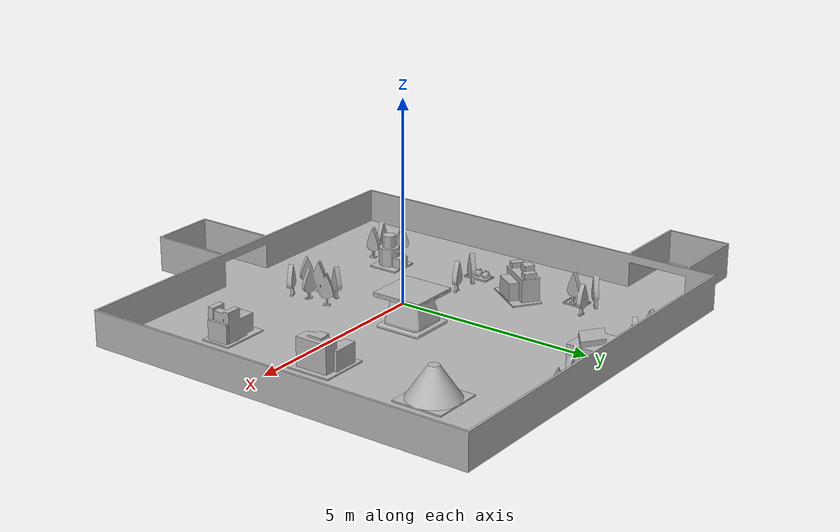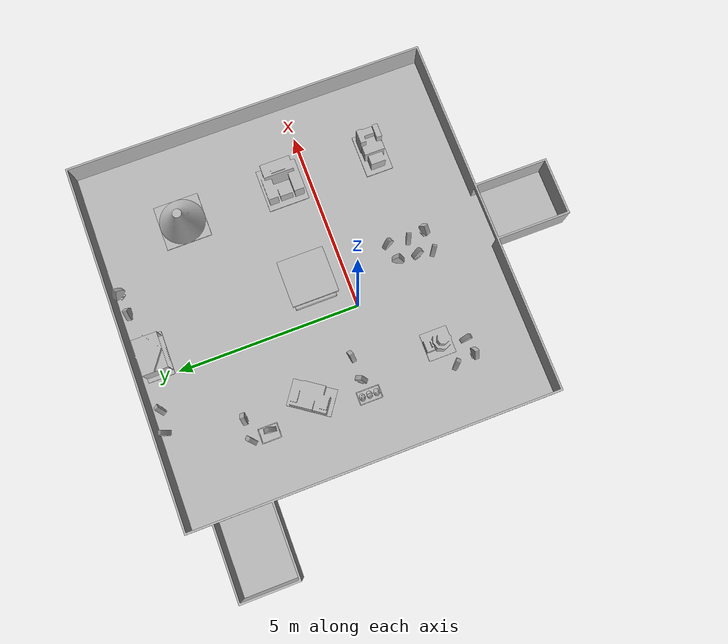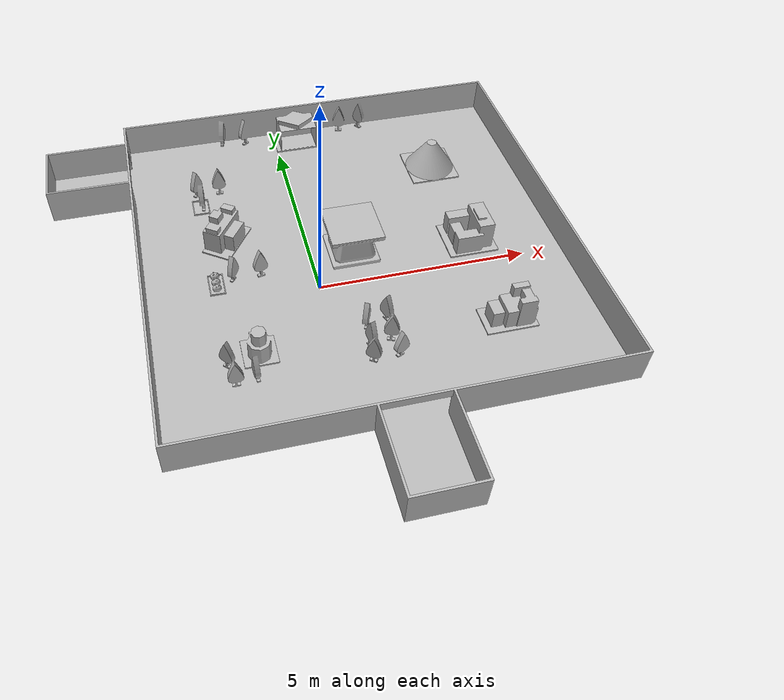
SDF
<?xml version="1.0"?>
<sdf version="1.6">
  <world name="ros_sandbox_world">
    <gravity>0 0 -9.81</gravity>

    <!-- 物理引擎配置: ODE 1ms 步长，满帧实时更新 -->
    <physics name="ode_physics" type="ode">
      <max_step_size>0.001</max_step_size>
      <real_time_update_rate>1000</real_time_update_rate>
    </physics>

    <plugin name="world_light_controller" filename="libgazebo_world_light.so">
      <light_percent>100</light_percent>
      <light_name>sun</light_name>
    </plugin>

    <scene>
      <ambient>0.02625 0.02625 0.02625 1.0</ambient>
      <background>0.1115 0.143 0.1785 1.0</background>
      <shadows>true</shadows>
    </scene>

    <!-- 太阳主光源 -->
    <light name="sun" type="directional">
      <cast_shadows>true</cast_shadows>
      <pose>0 0 50 0 0 0</pose>
      <diffuse>0.105 0.1029 0.09975 1.0</diffuse>
      <specular>0.021 0.021 0.021 1.0</specular>
      <direction>-0.6 0.6 -0.53</direction>
    </light>

    <!-- 真实感沙盘环境: 2.5 倍等比缩放的高精路面与障碍物 (居中放置在 Gazebo 网格原点) -->
    <model name="ros_sandbox">
      <static>true</static>
      <pose>-4.0 -4.0 0 0 0 0</pose>
      <link name="sandbox_environment">
        <!-- 1. 地面与路面 (接收动态阴影，关闭自投射以实现障碍物阴影投射并极大提升渲染性能) -->
        <visual name="ground_visual">
          <geometry>
            <mesh>
              <uri>file:///home/zf/catkin_ws/src/limo_gazebo_sim/CAD/meshes/ros_sandbox_ground.obj</uri>
              <scale>2.5 2.5 2.5</scale>
            </mesh>
          </geometry>
          <cast_shadows>false</cast_shadows>
        </visual>

        <!-- 2. 障碍物、建筑、树木、围墙与平台 (投射清晰真实的三维动态阴影到路面) -->
        <visual name="obstacles_visual">
          <geometry>
            <mesh>
              <uri>file:///home/zf/catkin_ws/src/limo_gazebo_sim/CAD/meshes/ros_sandbox_obstacles.obj</uri>
              <scale>2.5 2.5 2.5</scale>
            </mesh>
          </geometry>
          <cast_shadows>true</cast_shadows>
        </visual>

        <collision name="environment_collision">
          <geometry>
            <mesh>
              <uri>file:///home/zf/catkin_ws/src/limo_gazebo_sim/CAD/meshes/ros_sandbox_collision.stl</uri>
              <scale>2.5 2.5 2.5</scale>
            </mesh>
          </geometry>
          <surface>
            <friction>
              <ode>
                <mu>1.0</mu>
                <mu2>1.0</mu2>
              </ode>
            </friction>
          </surface>
        </collision>
      </link>
    </model>

    <!-- 俯瞰观察摄像机初始位姿: 瞄准沙盘中心 (0, 0, 0) -->
    <gui fullscreen="0">
      <camera name="sandbox_overview">
        <pose>13.5 -19.0 17.5 0 0.65 2.17</pose>
        <view_controller>orbit</view_controller>
      </camera>
    </gui>
  </world>
</sdf>
